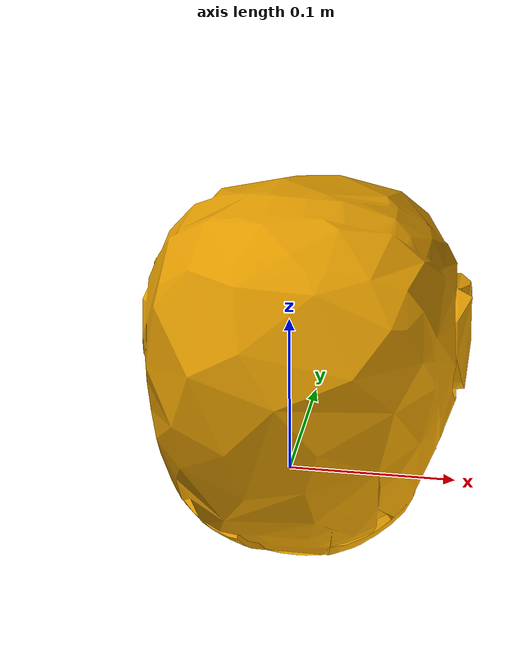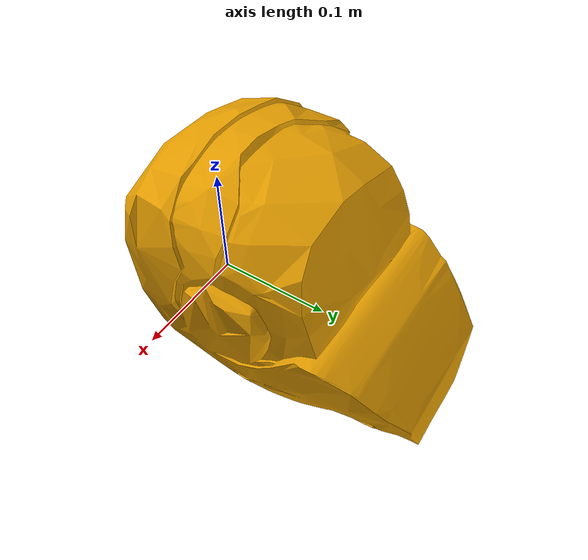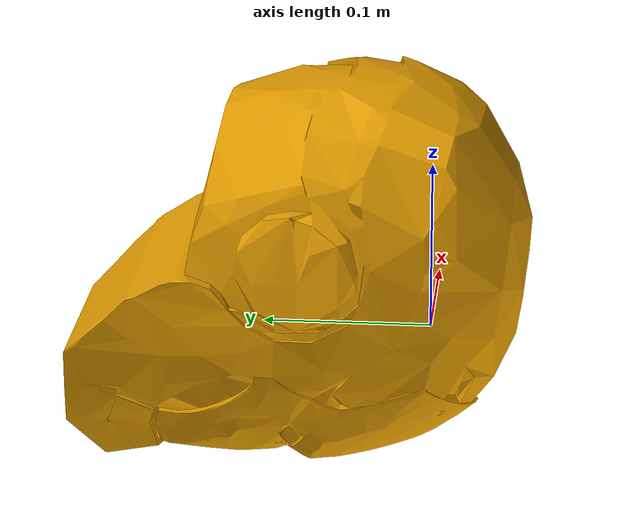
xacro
<?xml version="1.0"?>

<robot name="head">

    <gazebo reference="link_base">
        <turnGravityOff>true</turnGravityOff>
    </gazebo>
    <gazebo>
        <plugin name="gazebo_ros_template" filename="libgazebo_ros_template.so"/>
    </gazebo>

    <link name="link_base">
        <visual>
            <origin xyz="0.0 0.0 0.0"/>
            <geometry>
            <mesh filename="package://wai_oa_gazebo/resources/reps/head/head.dae"/>
            </geometry>
        </visual>
        <inertial>
            <origin xyz="0.0 0.0 0.0"/>
            <mass value="1.0" />
            <inertia  ixx="1.0" ixy="0.0"  ixz="0.0"  iyy="1.0"  iyz="0.0"  izz="1.0"/>
        </inertial>
    </link>

</robot>
